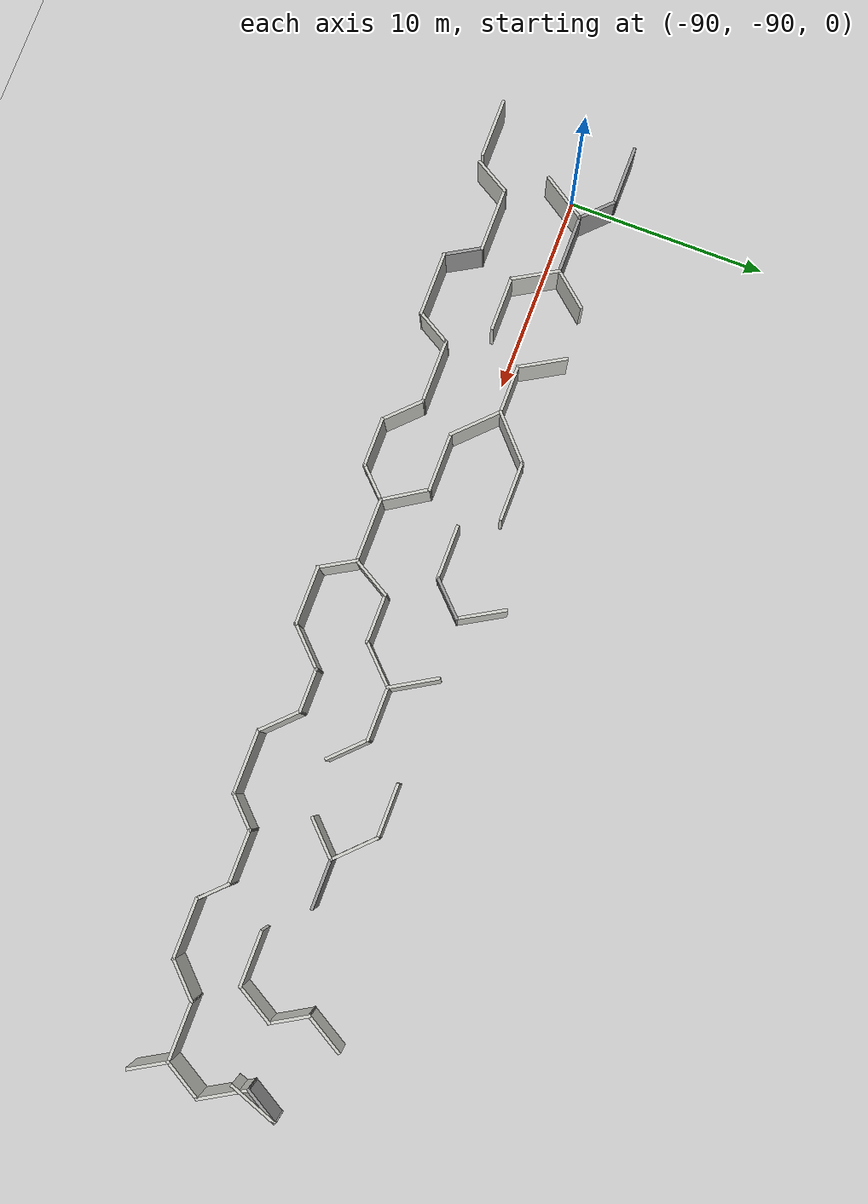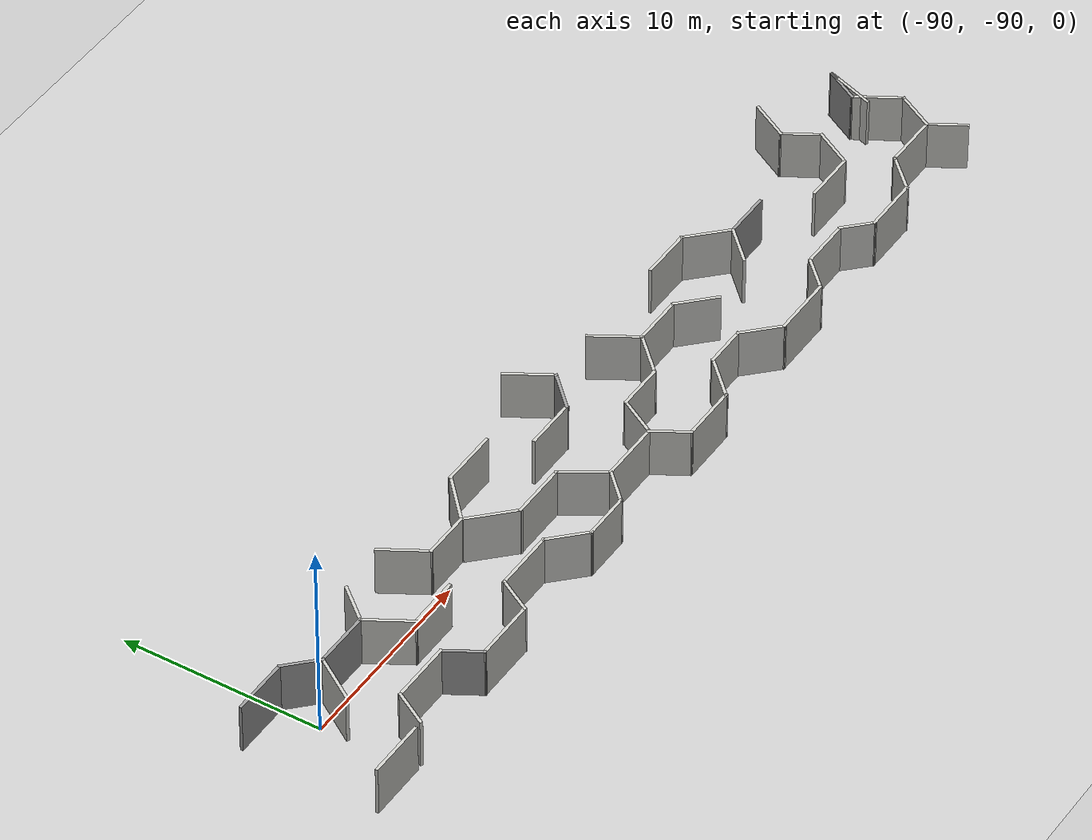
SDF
<sdf version="1.6">
 <world name="default">
  <model name="ground_plane">
   <pose>50 50 0 0 -0 0</pose>
   <static>1</static>
   <link name="link">
    <collision name="collision">
     <geometry><plane><normal>0 0 1</normal><size>100 100</size></plane></geometry>
     <surface><friction><ode><mu>100</mu><mu2>50</mu2></ode></friction></surface>
    </collision>
    <visual name="visual">
     <cast_shadows>0</cast_shadows>
     <geometry><plane><normal>0 0 1</normal><size>100 100</size></plane></geometry>
     <material>
      <script><uri>file://media/materials/scripts/gazebo.material</uri><name>Gazebo/Grey</name></script>
     </material>
    </visual>
   </link>
  </model>
  <model name="maze_1">
   <pose>-54.4916 -79.5001 0 0 -0 0</pose>
   <link name="Wall_10">
    <collision name="Wall_10_Collision">
     <geometry><box><size>2 0.15 2.5</size></box></geometry>
     <pose>0 0 1.25 0 -0 0</pose>
    </collision>
    <visual name="Wall_10_Visual">
     <pose>0 0 1.25 0 -0 0</pose>
     <geometry><box><size>2 0.15 2.5</size></box></geometry>
     <material>
      <script><uri>file://media/materials/scripts/gazebo.material</uri><name>Gazebo/Grey</name></script>
      <ambient>1 1 1 1</ambient>
     </material>
     <meta><layer>0</layer></meta>
    </visual>
    <pose>10.0085 -8.88058 0 0 -0 -2.0944</pose>
   </link>
   <link name="Wall_100">
    <collision name="Wall_100_Collision">
     <geometry><box><size>2.75 0.15 2.5</size></box></geometry>
     <pose>0 0 1.25 0 -0 0</pose>
    </collision>
    <visual name="Wall_100_Visual">
     <pose>0 0 1.25 0 -0 0</pose>
     <geometry><box><size>2.75 0.15 2.5</size></box></geometry>
     <material>
      <script><uri>file://media/materials/scripts/gazebo.material</uri><name>Gazebo/CeilingTiled</name></script>
      <ambient>1 1 1 1</ambient>
     </material>
     <meta><layer>0</layer></meta>
    </visual>
    <pose>-22.8053 -10.8644 0 0 -0 -0.785398</pose>
   </link>
   <link name="Wall_101">
    <collision name="Wall_101_Collision">
     <geometry><box><size>3 0.15 2.5</size></box></geometry>
     <pose>0 0 1.25 0 -0 0</pose>
    </collision>
    <visual name="Wall_101_Visual">
     <pose>0 0 1.25 0 -0 0</pose>
     <geometry><box><size>3 0.15 2.5</size></box></geometry>
     <material>
      <script><uri>file://media/materials/scripts/gazebo.material</uri><name>Gazebo/CeilingTiled</name></script>
      <ambient>1 1 1 1</ambient>
     </material>
     <meta><layer>0</layer></meta>
    </visual>
    <pose>-20.4611 -11.7836 0 0 -0 0</pose>
   </link>
   <link name="Wall_102">
    <collision name="Wall_102_Collision">
     <geometry><box><size>2.50433 0.15 2.5</size></box></geometry>
     <pose>0 0 1.25 0 -0 0</pose>
    </collision>
    <visual name="Wall_102_Visual">
     <pose>0 0 1.25 0 -0 0</pose>
     <geometry><box><size>2.50433 0.15 2.5</size></box></geometry>
     <material>
      <script><uri>file://media/materials/scripts/gazebo.material</uri><name>Gazebo/CeilingTiled</name></script>
      <ambient>1 1 1 1</ambient>
     </material>
     <meta><layer>0</layer></meta>
    </visual>
    <pose>-18.4056 -12.7777 0 0 -0 -1.00558</pose>
   </link>
   <link name="Wall_104">
    <collision name="Wall_104_Collision">
     <geometry><box><size>3 0.15 2.5</size></box></geometry>
     <pose>0 0 1.25 0 -0 0</pose>
    </collision>
    <visual name="Wall_104_Visual">
     <pose>0 0 1.25 0 -0 0</pose>
     <geometry><box><size>3 0.15 2.5</size></box></geometry>
     <material>
      <script><uri>file://media/materials/scripts/gazebo.material</uri><name>Gazebo/CeilingTiled</name></script>
      <ambient>1 1 1 1</ambient>
     </material>
     <meta><layer>0</layer></meta>
    </visual>
    <pose>-20.321 -8.13238 0 0 -0 3.14159</pose>
   </link>
   <link name="Wall_105">
    <collision name="Wall_105_Collision">
     <geometry><box><size>2.83342 0.15 2.5</size></box></geometry>
     <pose>0 0 1.25 0 -0 0</pose>
    </collision>
    <visual name="Wall_105_Visual">
     <pose>0 0 1.25 0 -0 0</pose>
     <geometry><box><size>2.83342 0.15 2.5</size></box></geometry>
     <material>
      <script><uri>file://media/materials/scripts/gazebo.material</uri><name>Gazebo/CeilingTiled</name></script>
      <ambient>1 1 1 1</ambient>
     </material>
     <meta><layer>0</layer></meta>
    </visual>
    <pose>-22.7353 -9.03876 0 0 -0 -2.39989</pose>
   </link>
   <link name="Wall_109">
    <collision name="Wall_109_Collision">
     <geometry><box><size>2.75 0.15 2.5</size></box></geometry>
     <pose>0 0 1.25 0 -0 0</pose>
    </collision>
    <visual name="Wall_109_Visual">
     <pose>0 0 1.25 0 -0 0</pose>
     <geometry><box><size>2.75 0.15 2.5</size></box></geometry>
     <material>
      <script><uri>file://media/materials/scripts/gazebo.material</uri><name>Gazebo/CeilingTiled</name></script>
      <ambient>1 1 1 1</ambient>
     </material>
     <meta><layer>0</layer></meta>
    </visual>
    <pose>-16.5382 -9.92253 0 0 -0 0</pose>
   </link>
   <link name="Wall_11">
    <collision name="Wall_11_Collision">
     <geometry><box><size>2.5 0.15 2.5</size></box></geometry>
     <pose>0 0 1.25 0 -0 0</pose>
    </collision>
    <visual name="Wall_11_Visual">
     <pose>0 0 1.25 0 -0 0</pose>
     <geometry><box><size>2.5 0.15 2.5</size></box></geometry>
     <material>
      <script><uri>file://media/materials/scripts/gazebo.material</uri><name>Gazebo/CeilingTiled</name></script>
      <ambient>1 1 1 1</ambient>
     </material>
     <meta><layer>0</layer></meta>
    </visual>
    <pose>10.1335 -10.6992 0 0 -0 -1.0472</pose>
   </link>
   <link name="Wall_110">
    <collision name="Wall_110_Collision">
     <geometry><box><size>2.25 0.15 2.5</size></box></geometry>
     <pose>0 0 1.25 0 -0 0</pose>
    </collision>
    <visual name="Wall_110_Visual">
     <pose>0 0 1.25 0 -0 0</pose>
     <geometry><box><size>2.25 0.15 2.5</size></box></geometry>
     <material>
      <script><uri>file://media/materials/scripts/gazebo.material</uri><name>Gazebo/Grey</name></script>
      <ambient>1 1 1 1</ambient>
     </material>
     <meta><layer>0</layer></meta>
    </visual>
    <pose>-14.4957 -9.18007 0 0 -0 0.785398</pose>
   </link>
   <link name="Wall_111">
    <collision name="Wall_111_Collision">
     <geometry><box><size>2.5 0.15 2.5</size></box></geometry>
     <pose>0 0 1.25 0 -0 0</pose>
    </collision>
    <visual name="Wall_111_Visual">
     <pose>0 0 1.25 0 -0 0</pose>
     <geometry><box><size>2.5 0.15 2.5</size></box></geometry>
     <material>
      <script><uri>file://media/materials/scripts/gazebo.material</uri><name>Gazebo/CeilingTiled</name></script>
      <ambient>1 1 1 1</ambient>
     </material>
     <meta><layer>0</layer></meta>
    </visual>
    <pose>-14.3408 -7.42003 0 0 -0 2.0944</pose>
   </link>
   <link name="Wall_12">
    <collision name="Wall_12_Collision">
     <geometry><box><size>2.25 0.15 2.5</size></box></geometry>
     <pose>0 0 1.25 0 -0 0</pose>
    </collision>
    <visual name="Wall_12_Visual">
     <pose>0 0 1.25 0 -0 0</pose>
     <geometry><box><size>2.25 0.15 2.5</size></box></geometry>
     <material>
      <script><uri>file://media/materials/scripts/gazebo.material</uri><name>Gazebo/CeilingTiled</name></script>
      <ambient>1 1 1 1</ambient>
     </material>
     <meta><layer>0</layer></meta>
    </visual>
    <pose>10.196 -12.6261 0 0 -0 -2.0944</pose>
   </link>
   <link name="Wall_126">
    <collision name="Wall_126_Collision">
     <geometry><box><size>2.5 0.15 2.5</size></box></geometry>
     <pose>0 0 1.25 0 -0 0</pose>
    </collision>
    <visual name="Wall_126_Visual">
     <pose>0 0 1.25 0 -0 0</pose>
     <geometry><box><size>2.5 0.15 2.5</size></box></geometry>
     <material>
      <script><uri>file://media/materials/scripts/gazebo.material</uri><name>Gazebo/Grey</name></script>
      <ambient>1 1 1 1</ambient>
     </material>
     <meta><layer>0</layer></meta>
    </visual>
    <pose>-0.135221 -9.92253 0 0 -0 3.14159</pose>
   </link>
   <link name="Wall_127">
    <collision name="Wall_127_Collision">
     <geometry><box><size>2.5 0.15 2.5</size></box></geometry>
     <pose>0 0 1.25 0 -0 0</pose>
    </collision>
    <visual name="Wall_127_Visual">
     <pose>0 0 1.25 0 -0 0</pose>
     <geometry><box><size>2.5 0.15 2.5</size></box></geometry>
     <material>
      <script><uri>file://media/materials/scripts/gazebo.material</uri><name>Gazebo/CeilingTiled</name></script>
      <ambient>1 1 1 1</ambient>
     </material>
     <meta><layer>0</layer></meta>
    </visual>
    <pose>-2.14107 -9.09168 0 0 -0 2.35619</pose>
   </link>
   <link name="Wall_128">
    <collision name="Wall_128_Collision">
     <geometry><box><size>2.75 0.15 2.5</size></box></geometry>
     <pose>0 0 1.25 0 -0 0</pose>
    </collision>
    <visual name="Wall_128_Visual">
     <pose>0 0 1.25 0 -0 0</pose>
     <geometry><box><size>2.75 0.15 2.5</size></box></geometry>
     <material>
      <script><uri>file://media/materials/scripts/gazebo.material</uri><name>Gazebo/CeilingTiled</name></script>
      <ambient>1 1 1 1</ambient>
     </material>
     <meta><layer>0</layer></meta>
    </visual>
    <pose>-4.27192 -8.26083 0 0 -0 3.14159</pose>
   </link>
   <link name="Wall_13">
    <collision name="Wall_13_Collision">
     <geometry><box><size>2 0.15 2.5</size></box></geometry>
     <pose>0 0 1.25 0 -0 0</pose>
    </collision>
    <visual name="Wall_13_Visual">
     <pose>0 0 1.25 0 -0 0</pose>
     <geometry><box><size>2 0.15 2.5</size></box></geometry>
     <material>
      <script><uri>file://media/materials/scripts/gazebo.material</uri><name>Gazebo/CeilingTiled</name></script>
      <ambient>1 1 1 1</ambient>
     </material>
     <meta><layer>0</layer></meta>
    </visual>
    <pose>10.1335 -14.3365 0 0 -0 -1.0472</pose>
   </link>
   <link name="Wall_135">
    <collision name="Wall_135_Collision">
     <geometry><box><size>2.22826 0.15 2.5</size></box></geometry>
     <pose>0 0 1.25 0 -0 0</pose>
    </collision>
    <visual name="Wall_135_Visual">
     <pose>0 0 1.25 0 -0 0</pose>
     <geometry><box><size>2.22826 0.15 2.5</size></box></geometry>
     <material>
      <script><uri>file://media/materials/scripts/gazebo.material</uri><name>Gazebo/CeilingTiled</name></script>
      <ambient>1 1 1 1</ambient>
     </material>
     <meta><layer>0</layer></meta>
    </visual>
    <pose>-2.04743 -10.6549 0 0 -0 0.782082</pose>
   </link>
   <link name="Wall_137">
    <collision name="Wall_137_Collision">
     <geometry><box><size>2.75 0.15 2.5</size></box></geometry>
     <pose>0 0 1.25 0 -0 0</pose>
    </collision>
    <visual name="Wall_137_Visual">
     <pose>0 0 1.25 0 -0 0</pose>
     <geometry><box><size>2.75 0.15 2.5</size></box></geometry>
     <material>
      <script><uri>file://media/materials/scripts/gazebo.material</uri><name>Gazebo/CeilingTiled</name></script>
      <ambient>1 1 1 1</ambient>
     </material>
     <meta><layer>0</layer></meta>
    </visual>
    <pose>4.12993 -11.7127 0 0 -0 0</pose>
   </link>
   <link name="Wall_138">
    <collision name="Wall_138_Collision">
     <geometry><box><size>2.25 0.15 2.5</size></box></geometry>
     <pose>0 0 1.25 0 -0 0</pose>
    </collision>
    <visual name="Wall_138_Visual">
     <pose>0 0 1.25 0 -0 0</pose>
     <geometry><box><size>2.25 0.15 2.5</size></box></geometry>
     <material>
      <script><uri>file://media/materials/scripts/gazebo.material</uri><name>Gazebo/CeilingTiled</name></script>
      <ambient>1 1 1 1</ambient>
     </material>
     <meta><layer>0</layer></meta>
    </visual>
    <pose>5.95493 -10.8034 0 0 -0 1.0472</pose>
   </link>
   <link name="Wall_139">
    <collision name="Wall_139_Collision">
     <geometry><box><size>2 0.15 2.5</size></box></geometry>
     <pose>0 0 1.25 0 -0 0</pose>
    </collision>
    <visual name="Wall_139_Visual">
     <pose>0 0 1.25 0 -0 0</pose>
     <geometry><box><size>2 0.15 2.5</size></box></geometry>
     <material>
      <script><uri>file://media/materials/scripts/gazebo.material</uri><name>Gazebo/CeilingTiled</name></script>
      <ambient>1 1 1 1</ambient>
     </material>
     <meta><layer>0</layer></meta>
    </visual>
    <pose>6.01743 -9.09296 0 0 -0 2.0944</pose>
   </link>
   <link name="Wall_140">
    <collision name="Wall_140_Collision">
     <geometry><box><size>2.25 0.15 2.5</size></box></geometry>
     <pose>0 0 1.25 0 -0 0</pose>
    </collision>
    <visual name="Wall_140_Visual">
     <pose>0 0 1.25 0 -0 0</pose>
     <geometry><box><size>2.25 0.15 2.5</size></box></geometry>
     <material>
      <script><uri>file://media/materials/scripts/gazebo.material</uri><name>Gazebo/CeilingTiled</name></script>
      <ambient>1 1 1 1</ambient>
     </material>
     <meta><layer>0</layer></meta>
    </visual>
    <pose>6.07993 -7.38256 0 0 -0 1.0472</pose>
   </link>
   <link name="Wall_15">
    <collision name="Wall_15_Collision">
     <geometry><box><size>3 0.15 2.5</size></box></geometry>
     <pose>0 0 1.25 0 -0 0</pose>
    </collision>
    <visual name="Wall_15_Visual">
     <pose>0 0 1.25 0 -0 0</pose>
     <geometry><box><size>3 0.15 2.5</size></box></geometry>
     <material>
      <script><uri>file://media/materials/scripts/gazebo.material</uri><name>Gazebo/CeilingTiled</name></script>
      <ambient>1 1 1 1</ambient>
     </material>
     <meta><layer>0</layer></meta>
    </visual>
    <pose>8.24595 -13.5355 0 0 -0 3.14159</pose>
   </link>
   <link name="Wall_16">
    <collision name="Wall_16_Collision">
     <geometry><box><size>2.25 0.15 2.5</size></box></geometry>
     <pose>0 0 1.25 0 -0 0</pose>
    </collision>
    <visual name="Wall_16_Visual">
     <pose>0 0 1.25 0 -0 0</pose>
     <geometry><box><size>2.25 0.15 2.5</size></box></geometry>
     <material>
      <script><uri>file://media/materials/scripts/gazebo.material</uri><name>Gazebo/CeilingTiled</name></script>
      <ambient>1 1 1 1</ambient>
     </material>
     <meta><layer>0</layer></meta>
    </visual>
    <pose>6.07849 -14.2779 0 0 -0 -2.35619</pose>
   </link>
   <link name="Wall_17">
    <collision name="Wall_17_Collision">
     <geometry><box><size>3 0.15 2.5</size></box></geometry>
     <pose>0 0 1.25 0 -0 0</pose>
    </collision>
    <visual name="Wall_17_Visual">
     <pose>0 0 1.25 0 -0 0</pose>
     <geometry><box><size>3 0.15 2.5</size></box></geometry>
     <material>
      <script><uri>file://media/materials/scripts/gazebo.material</uri><name>Gazebo/CeilingTiled</name></script>
      <ambient>1 1 1 1</ambient>
     </material>
     <meta><layer>0</layer></meta>
    </visual>
    <pose>3.91103 -15.0204 0 0 -0 3.14159</pose>
   </link>
   <link name="Wall_18">
    <collision name="Wall_18_Collision">
     <geometry><box><size>1.75 0.15 2.5</size></box></geometry>
     <pose>0 0 1.25 0 -0 0</pose>
    </collision>
    <visual name="Wall_18_Visual">
     <pose>0 0 1.25 0 -0 0</pose>
     <geometry><box><size>1.75 0.15 2.5</size></box></geometry>
     <material>
      <script><uri>file://media/materials/scripts/gazebo.material</uri><name>Gazebo/CeilingTiled</name></script>
      <ambient>1 1 1 1</ambient>
     </material>
     <meta><layer>0</layer></meta>
    </visual>
    <pose>1.92034 -14.4547 0 0 -0 2.35619</pose>
   </link>
   <link name="Wall_19">
    <collision name="Wall_19_Collision">
     <geometry><box><size>2.75 0.15 2.5</size></box></geometry>
     <pose>0 0 1.25 0 -0 0</pose>
    </collision>
    <visual name="Wall_19_Visual">
     <pose>0 0 1.25 0 -0 0</pose>
     <geometry><box><size>2.75 0.15 2.5</size></box></geometry>
     <material>
      <script><uri>file://media/materials/scripts/gazebo.material</uri><name>Gazebo/CeilingTiled</name></script>
      <ambient>1 1 1 1</ambient>
     </material>
     <meta><layer>0</layer></meta>
    </visual>
    <pose>0.054658 -13.889 0 0 -0 3.14159</pose>
   </link>
   <link name="Wall_20">
    <collision name="Wall_20_Collision">
     <geometry><box><size>2 0.15 2.5</size></box></geometry>
     <pose>0 0 1.25 0 -0 0</pose>
    </collision>
    <visual name="Wall_20_Visual">
     <pose>0 0 1.25 0 -0 0</pose>
     <geometry><box><size>2 0.15 2.5</size></box></geometry>
     <material>
      <script><uri>file://media/materials/scripts/gazebo.material</uri><name>Gazebo/CeilingTiled</name></script>
      <ambient>1 1 1 1</ambient>
     </material>
     <meta><layer>0</layer></meta>
    </visual>
    <pose>-1.89942 -14.5431 0 0 -0 -2.35619</pose>
   </link>
   <link name="Wall_21">
    <collision name="Wall_21_Collision">
     <geometry><box><size>3.25 0.15 2.5</size></box></geometry>
     <pose>0 0 1.25 0 -0 0</pose>
    </collision>
    <visual name="Wall_21_Visual">
     <pose>0 0 1.25 0 -0 0</pose>
     <geometry><box><size>3.25 0.15 2.5</size></box></geometry>
     <material>
      <script><uri>file://media/materials/scripts/gazebo.material</uri><name>Gazebo/CeilingTiled</name></script>
      <ambient>1 1 1 1</ambient>
     </material>
     <meta><layer>0</layer></meta>
    </visual>
    <pose>-4.10349 -15.1972 0 0 -0 3.14159</pose>
   </link>
   <link name="Wall_22">
    <collision name="Wall_22_Collision">
     <geometry><box><size>2.25 0.15 2.5</size></box></geometry>
     <pose>0 0 1.25 0 -0 0</pose>
    </collision>
    <visual name="Wall_22_Visual">
     <pose>0 0 1.25 0 -0 0</pose>
     <geometry><box><size>2.25 0.15 2.5</size></box></geometry>
     <material>
      <script><uri>file://media/materials/scripts/gazebo.material</uri><name>Gazebo/CeilingTiled</name></script>
      <ambient>1 1 1 1</ambient>
     </material>
     <meta><layer>0</layer></meta>
    </visual>
    <pose>-6.39595 -14.4547 0 0 -0 2.35619</pose>
   </link>
   <link name="Wall_23">
    <collision name="Wall_23_Collision">
     <geometry><box><size>2.25 0.15 2.5</size></box></geometry>
     <pose>0 0 1.25 0 -0 0</pose>
    </collision>
    <visual name="Wall_23_Visual">
     <pose>0 0 1.25 0 -0 0</pose>
     <geometry><box><size>2.25 0.15 2.5</size></box></geometry>
     <material>
      <script><uri>file://media/materials/scripts/gazebo.material</uri><name>Gazebo/CeilingTiled</name></script>
      <ambient>1 1 1 1</ambient>
     </material>
     <meta><layer>0</layer></meta>
    </visual>
    <pose>-8.18841 -13.7122 0 0 -0 3.14159</pose>
   </link>
   <link name="Wall_24">
    <collision name="Wall_24_Collision">
     <geometry><box><size>2.5 0.15 2.5</size></box></geometry>
     <pose>0 0 1.25 0 -0 0</pose>
    </collision>
    <visual name="Wall_24_Visual">
     <pose>0 0 1.25 0 -0 0</pose>
     <geometry><box><size>2.5 0.15 2.5</size></box></geometry>
     <material>
      <script><uri>file://media/materials/scripts/gazebo.material</uri><name>Gazebo/CeilingTiled</name></script>
      <ambient>1 1 1 1</ambient>
     </material>
     <meta><layer>0</layer></meta>
    </visual>
    <pose>-10.0693 -14.5431 0 0 -0 -2.35619</pose>
   </link>
   <link name="Wall_25">
    <collision name="Wall_25_Collision">
     <geometry><box><size>3 0.15 2.5</size></box></geometry>
     <pose>0 0 1.25 0 -0 0</pose>
    </collision>
    <visual name="Wall_25_Visual">
     <pose>0 0 1.25 0 -0 0</pose>
     <geometry><box><size>3 0.15 2.5</size></box></geometry>
     <material>
      <script><uri>file://media/materials/scripts/gazebo.material</uri><name>Gazebo/CeilingTiled</name></script>
      <ambient>1 1 1 1</ambient>
     </material>
     <meta><layer>0</layer></meta>
    </visual>
    <pose>-12.3251 -15.3739 0 0 -0 3.14159</pose>
   </link>
   <link name="Wall_26">
    <collision name="Wall_26_Collision">
     <geometry><box><size>2 0.15 2.5</size></box></geometry>
     <pose>0 0 1.25 0 -0 0</pose>
    </collision>
    <visual name="Wall_26_Visual">
     <pose>0 0 1.25 0 -0 0</pose>
     <geometry><box><size>2 0.15 2.5</size></box></geometry>
     <material>
      <script><uri>file://media/materials/scripts/gazebo.material</uri><name>Gazebo/CeilingTiled</name></script>
      <ambient>1 1 1 1</ambient>
     </material>
     <meta><layer>0</layer></meta>
    </visual>
    <pose>-14.2126 -14.5729 0 0 -0 2.0944</pose>
   </link>
   <link name="Wall_27">
    <collision name="Wall_27_Collision">
     <geometry><box><size>2.25 0.15 2.5</size></box></geometry>
     <pose>0 0 1.25 0 -0 0</pose>
    </collision>
    <visual name="Wall_27_Visual">
     <pose>0 0 1.25 0 -0 0</pose>
     <geometry><box><size>2.25 0.15 2.5</size></box></geometry>
     <material>
      <script><uri>file://media/materials/scripts/gazebo.material</uri><name>Gazebo/CeilingTiled</name></script>
      <ambient>1 1 1 1</ambient>
     </material>
     <meta><layer>0</layer></meta>
    </visual>
    <pose>-14.1501 -12.8625 0 0 -0 1.0472</pose>
   </link>
   <link name="Wall_28">
    <collision name="Wall_28_Collision">
     <geometry><box><size>2.5 0.15 2.5</size></box></geometry>
     <pose>0 0 1.25 0 -0 0</pose>
    </collision>
    <visual name="Wall_28_Visual">
     <pose>0 0 1.25 0 -0 0</pose>
     <geometry><box><size>2.5 0.15 2.5</size></box></geometry>
     <material>
      <script><uri>file://media/materials/scripts/gazebo.material</uri><name>Gazebo/CeilingTiled</name></script>
      <ambient>1 1 1 1</ambient>
     </material>
     <meta><layer>0</layer></meta>
    </visual>
    <pose>-12.4501 -11.9531 0 0 -0 0</pose>
   </link>
   <link name="Wall_29">
    <collision name="Wall_29_Collision">
     <geometry><box><size>2.5 0.15 2.5</size></box></geometry>
     <pose>0 0 1.25 0 -0 0</pose>
    </collision>
    <visual name="Wall_29_Visual">
     <pose>0 0 1.25 0 -0 0</pose>
     <geometry><box><size>2.5 0.15 2.5</size></box></geometry>
     <material>
      <script><uri>file://media/materials/scripts/gazebo.material</uri><name>Gazebo/CeilingTiled</name></script>
      <ambient>1 1 1 1</ambient>
     </material>
     <meta><layer>0</layer></meta>
    </visual>
    <pose>-10.4443 -11.1223 0 0 -0 0.785398</pose>
   </link>
   <link name="Wall_30">
    <collision name="Wall_30_Collision">
     <geometry><box><size>2.75 0.15 2.5</size></box></geometry>
     <pose>0 0 1.25 0 -0 0</pose>
    </collision>
    <visual name="Wall_30_Visual">
     <pose>0 0 1.25 0 -0 0</pose>
     <geometry><box><size>2.75 0.15 2.5</size></box></geometry>
     <material>
      <script><uri>file://media/materials/scripts/gazebo.material</uri><name>Gazebo/CeilingTiled</name></script>
      <ambient>1 1 1 1</ambient>
     </material>
     <meta><layer>0</layer></meta>
    </visual>
    <pose>-8.31341 -10.2914 0 0 -0 0</pose>
   </link>
   <link name="Wall_31">
    <collision name="Wall_31_Collision">
     <geometry><box><size>2.25 0.15 2.5</size></box></geometry>
     <pose>0 0 1.25 0 -0 0</pose>
    </collision>
    <visual name="Wall_31_Visual">
     <pose>0 0 1.25 0 -0 0</pose>
     <geometry><box><size>2.25 0.15 2.5</size></box></geometry>
     <material>
      <script><uri>file://media/materials/scripts/gazebo.material</uri><name>Gazebo/CeilingTiled</name></script>
      <ambient>1 1 1 1</ambient>
     </material>
     <meta><layer>0</layer></meta>
    </visual>
    <pose>-6.27095 -11.0339 0 0 -0 -0.785398</pose>
   </link>
   <link name="Wall_33">
    <collision name="Wall_33_Collision">
     <geometry><box><size>2.56291 0.15 2.5</size></box></geometry>
     <pose>0 0 1.25 0 -0 0</pose>
    </collision>
    <visual name="Wall_33_Visual">
     <pose>0 0 1.25 0 -0 0</pose>
     <geometry><box><size>2.56291 0.15 2.5</size></box></geometry>
     <material>
      <script><uri>file://media/materials/scripts/gazebo.material</uri><name>Gazebo/CeilingTiled</name></script>
      <ambient>1 1 1 1</ambient>
     </material>
     <meta><layer>0</layer></meta>
    </visual>
    <pose>-10.2269 -9.25259 0 0 -0 -1.03738</pose>
   </link>
   <link name="Wall_35">
    <collision name="Wall_35_Collision">
     <geometry><box><size>3.25 0.15 2.5</size></box></geometry>
     <pose>0 0 1.25 0 -0 0</pose>
    </collision>
    <visual name="Wall_35_Visual">
     <pose>0 0 1.25 0 -0 0</pose>
     <geometry><box><size>3.25 0.15 2.5</size></box></geometry>
     <material>
      <script><uri>file://media/materials/scripts/gazebo.material</uri><name>Gazebo/CeilingTiled</name></script>
      <ambient>1 1 1 1</ambient>
     </material>
     <meta><layer>0</layer></meta>
    </visual>
    <pose>-16.2251 -13.7718 0 0 -0 3.14159</pose>
   </link>
   <link name="Wall_36">
    <collision name="Wall_36_Collision">
     <geometry><box><size>2 0.15 2.5</size></box></geometry>
     <pose>0 0 1.25 0 -0 0</pose>
    </collision>
    <visual name="Wall_36_Visual">
     <pose>0 0 1.25 0 -0 0</pose>
     <geometry><box><size>2 0.15 2.5</size></box></geometry>
     <material>
      <script><uri>file://media/materials/scripts/gazebo.material</uri><name>Gazebo/CeilingTiled</name></script>
      <ambient>1 1 1 1</ambient>
     </material>
     <meta><layer>0</layer></meta>
    </visual>
    <pose>-18.4292 -14.4259 0 0 -0 -2.35619</pose>
   </link>
   <link name="Wall_37">
    <collision name="Wall_37_Collision">
     <geometry><box><size>2.5 0.15 2.5</size></box></geometry>
     <pose>0 0 1.25 0 -0 0</pose>
    </collision>
    <visual name="Wall_37_Visual">
     <pose>0 0 1.25 0 -0 0</pose>
     <geometry><box><size>2.5 0.15 2.5</size></box></geometry>
     <material>
      <script><uri>file://media/materials/scripts/gazebo.material</uri><name>Gazebo/CeilingTiled</name></script>
      <ambient>1 1 1 1</ambient>
     </material>
     <meta><layer>0</layer></meta>
    </visual>
    <pose>-20.2583 -15.0799 0 0 -0 3.14159</pose>
   </link>
   <link name="Wall_38">
    <collision name="Wall_38_Collision">
     <geometry><box><size>2.25 0.15 2.5</size></box></geometry>
     <pose>0 0 1.25 0 -0 0</pose>
    </collision>
    <visual name="Wall_38_Visual">
     <pose>0 0 1.25 0 -0 0</pose>
     <geometry><box><size>2.25 0.15 2.5</size></box></geometry>
     <material>
      <script><uri>file://media/materials/scripts/gazebo.material</uri><name>Gazebo/CeilingTiled</name></script>
      <ambient>1 1 1 1</ambient>
     </material>
     <meta><layer>0</layer></meta>
    </visual>
    <pose>-22.1757 -14.3375 0 0 -0 2.35619</pose>
   </link>
   <link name="Wall_39">
    <collision name="Wall_39_Collision">
     <geometry><box><size>3.25 0.15 2.5</size></box></geometry>
     <pose>0 0 1.25 0 -0 0</pose>
    </collision>
    <visual name="Wall_39_Visual">
     <pose>0 0 1.25 0 -0 0</pose>
     <geometry><box><size>3.25 0.15 2.5</size></box></geometry>
     <material>
      <script><uri>file://media/materials/scripts/gazebo.material</uri><name>Gazebo/CeilingTiled</name></script>
      <ambient>1 1 1 1</ambient>
     </material>
     <meta><layer>0</layer></meta>
    </visual>
    <pose>-24.4682 -13.595 0 0 -0 3.14159</pose>
   </link>
   <link name="Wall_40">
    <collision name="Wall_40_Collision">
     <geometry><box><size>2 0.15 2.5</size></box></geometry>
     <pose>0 0 1.25 0 -0 0</pose>
    </collision>
    <visual name="Wall_40_Visual">
     <pose>0 0 1.25 0 -0 0</pose>
     <geometry><box><size>2 0.15 2.5</size></box></geometry>
     <material>
      <script><uri>file://media/materials/scripts/gazebo.material</uri><name>Gazebo/CeilingTiled</name></script>
      <ambient>1 1 1 1</ambient>
     </material>
     <meta><layer>0</layer></meta>
    </visual>
    <pose>-26.4807 -14.3961 0 0 -0 -2.0944</pose>
   </link>
   <link name="Wall_41">
    <collision name="Wall_41_Collision">
     <geometry><box><size>3.25 0.15 2.5</size></box></geometry>
     <pose>0 0 1.25 0 -0 0</pose>
    </collision>
    <visual name="Wall_41_Visual">
     <pose>0 0 1.25 0 -0 0</pose>
     <geometry><box><size>3.25 0.15 2.5</size></box></geometry>
     <material>
      <script><uri>file://media/materials/scripts/gazebo.material</uri><name>Gazebo/CeilingTiled</name></script>
      <ambient>1 1 1 1</ambient>
     </material>
     <meta><layer>0</layer></meta>
    </visual>
    <pose>-28.4932 -15.1972 0 0 -0 3.14159</pose>
   </link>
   <link name="Wall_42">
    <collision name="Wall_42_Collision">
     <geometry><box><size>2 0.15 2.5</size></box></geometry>
     <pose>0 0 1.25 0 -0 0</pose>
    </collision>
    <visual name="Wall_42_Visual">
     <pose>0 0 1.25 0 -0 0</pose>
     <geometry><box><size>2 0.15 2.5</size></box></geometry>
     <material>
      <script><uri>file://media/materials/scripts/gazebo.material</uri><name>Gazebo/Grey</name></script>
      <ambient>1 1 1 1</ambient>
     </material>
     <meta><layer>0</layer></meta>
    </visual>
    <pose>-30.5057 -14.3961 0 0 -0 2.0944</pose>
   </link>
   <link name="Wall_43">
    <collision name="Wall_43_Collision">
     <geometry><box><size>3.25 0.15 2.5</size></box></geometry>
     <pose>0 0 1.25 0 -0 0</pose>
    </collision>
    <visual name="Wall_43_Visual">
     <pose>0 0 1.25 0 -0 0</pose>
     <geometry><box><size>3.25 0.15 2.5</size></box></geometry>
     <material>
      <script><uri>file://media/materials/scripts/gazebo.material</uri><name>Gazebo/CeilingTiled</name></script>
      <ambient>1 1 1 1</ambient>
     </material>
     <meta><layer>0</layer></meta>
    </visual>
    <pose>-32.5182 -13.595 0 0 -0 3.14159</pose>
   </link>
   <link name="Wall_44">
    <collision name="Wall_44_Collision">
     <geometry><box><size>2 0.15 2.5</size></box></geometry>
     <pose>0 0 1.25 0 -0 0</pose>
    </collision>
    <visual name="Wall_44_Visual">
     <pose>0 0 1.25 0 -0 0</pose>
     <geometry><box><size>2 0.15 2.5</size></box></geometry>
     <material>
      <script><uri>file://media/materials/scripts/gazebo.material</uri><name>Gazebo/CeilingTiled</name></script>
      <ambient>1 1 1 1</ambient>
     </material>
     <meta><layer>0</layer></meta>
    </visual>
    <pose>-34.5307 -14.3961 0 0 -0 -2.0944</pose>
   </link>
   <link name="Wall_46">
    <collision name="Wall_46_Collision">
     <geometry><box><size>3 0.15 2.5</size></box></geometry>
     <pose>0 0 1.25 0 -0 0</pose>
    </collision>
    <visual name="Wall_46_Visual">
     <pose>0 0 1.25 0 -0 0</pose>
     <geometry><box><size>3 0.15 2.5</size></box></geometry>
     <material>
      <script><uri>file://media/materials/scripts/gazebo.material</uri><name>Gazebo/CeilingTiled</name></script>
      <ambient>1 1 1 1</ambient>
     </material>
     <meta><layer>0</layer></meta>
    </visual>
    <pose>-36.8393 -15.2116 0 0 -0 3.14159</pose>
   </link>
   <link name="Wall_51">
    <collision name="Wall_51_Collision">
     <geometry><box><size>3 0.15 2.5</size></box></geometry>
     <pose>0 0 1.25 0 -0 0</pose>
    </collision>
    <visual name="Wall_51_Visual">
     <pose>0 0 1.25 0 -0 0</pose>
     <geometry><box><size>3 0.15 2.5</size></box></geometry>
     <material>
      <script><uri>file://media/materials/scripts/gazebo.material</uri><name>Gazebo/Grey</name></script>
      <ambient>1 1 1 1</ambient>
     </material>
     <meta><layer>0</layer></meta>
    </visual>
    <pose>-36.7956 -8.40778 0 0 -0 0</pose>
   </link>
   <link name="Wall_52">
    <collision name="Wall_52_Collision">
     <geometry><box><size>2 0.15 2.5</size></box></geometry>
     <pose>0 0 1.25 0 -0 0</pose>
    </collision>
    <visual name="Wall_52_Visual">
     <pose>0 0 1.25 0 -0 0</pose>
     <geometry><box><size>2 0.15 2.5</size></box></geometry>
     <material>
      <script><uri>file://media/materials/scripts/gazebo.material</uri><name>Gazebo/Grey</name></script>
      <ambient>1 1 1 1</ambient>
     </material>
     <meta><layer>0</layer></meta>
    </visual>
    <pose>-34.7166 -9.06186 0 0 -0 -0.785398</pose>
   </link>
   <link name="Wall_53">
    <collision name="Wall_53_Collision">
     <geometry><box><size>3 0.15 2.5</size></box></geometry>
     <pose>0 0 1.25 0 -0 0</pose>
    </collision>
    <visual name="Wall_53_Visual">
     <pose>0 0 1.25 0 -0 0</pose>
     <geometry><box><size>3 0.15 2.5</size></box></geometry>
     <material>
      <script><uri>file://media/materials/scripts/gazebo.material</uri><name>Gazebo/Grey</name></script>
      <ambient>1 1 1 1</ambient>
     </material>
     <meta><layer>0</layer></meta>
    </visual>
    <pose>-32.6375 -9.71593 0 0 -0 0</pose>
   </link>
   <link name="Wall_54">
    <collision name="Wall_54_Collision">
     <geometry><box><size>2.5 0.15 2.5</size></box></geometry>
     <pose>0 0 1.25 0 -0 0</pose>
    </collision>
    <visual name="Wall_54_Visual">
     <pose>0 0 1.25 0 -0 0</pose>
     <geometry><box><size>2.5 0.15 2.5</size></box></geometry>
     <material>
      <script><uri>file://media/materials/scripts/gazebo.material</uri><name>Gazebo/CeilingTiled</name></script>
      <ambient>1 1 1 1</ambient>
     </material>
     <meta><layer>0</layer></meta>
    </visual>
    <pose>-30.625 -10.7335 0 0 -0 -1.0472</pose>
   </link>
   <link name="Wall_55">
    <collision name="Wall_55_Collision">
     <geometry><box><size>2.75 0.15 2.5</size></box></geometry>
     <pose>0 0 1.25 0 -0 0</pose>
    </collision>
    <visual name="Wall_55_Visual">
     <pose>0 0 1.25 0 -0 0</pose>
     <geometry><box><size>2.75 0.15 2.5</size></box></geometry>
     <material>
      <script><uri>file://media/materials/scripts/gazebo.material</uri><name>Gazebo/CeilingTiled</name></script>
      <ambient>1 1 1 1</ambient>
     </material>
     <meta><layer>0</layer></meta>
    </visual>
    <pose>-28.7375 -11.7511 0 0 -0 0</pose>
   </link>
   <link name="Wall_57">
    <collision name="Wall_57_Collision">
     <geometry><box><size>2.2189 0.15 2.5</size></box></geometry>
     <pose>0 0 1.25 0 -0 0</pose>
    </collision>
    <visual name="Wall_57_Visual">
     <pose>0 0 1.25 0 -0 0</pose>
     <geometry><box><size>2.2189 0.15 2.5</size></box></geometry>
     <material>
      <script><uri>file://media/materials/scripts/gazebo.material</uri><name>Gazebo/CeilingTiled</name></script>
      <ambient>1 1 1 1</ambient>
     </material>
     <meta><layer>0</layer></meta>
    </visual>
    <pose>-30.5468 -8.92415 0 0 -0 -2.26992</pose>
   </link>
   <link name="Wall_59">
    <collision name="Wall_59_Collision">
     <geometry><box><size>2.62909 0.15 2.5</size></box></geometry>
     <pose>0 0 1.25 0 -0 0</pose>
    </collision>
    <visual name="Wall_59_Visual">
     <pose>0 0 1.25 0 -0 0</pose>
     <geometry><box><size>2.62909 0.15 2.5</size></box></geometry>
     <material>
      <script><uri>file://media/materials/scripts/gazebo.material</uri><name>Gazebo/CeilingTiled</name></script>
      <ambient>1 1 1 1</ambient>
     </material>
     <meta><layer>0</layer></meta>
    </visual>
    <pose>-34.7384 -10.755 0 0 -0 0.994084</pose>
   </link>
   <link name="Wall_6">
    <collision name="Wall_6_Collision">
     <geometry><box><size>2.65885 0.15 2.5</size></box></geometry>
     <pose>0 0 1.25 0 -0 0</pose>
    </collision>
    <visual name="Wall_6_Visual">
     <pose>0 0 1.25 0 -0 0</pose>
     <geometry><box><size>2.65885 0.15 2.5</size></box></geometry>
     <material>
      <script><uri>file://media/materials/scripts/gazebo.material</uri><name>Gazebo/CeilingTiled</name></script>
      <ambient>1 1 1 1</ambient>
     </material>
     <meta><layer>0</layer></meta>
    </visual>
    <pose>10.0462 -9.25983 0 0 -0 -1.91623</pose>
   </link>
   <link name="Wall_98">
    <collision name="Wall_98_Collision">
     <geometry><box><size>2.5 0.15 2.5</size></box></geometry>
     <pose>0 0 1.25 0 -0 0</pose>
    </collision>
    <visual name="Wall_98_Visual">
     <pose>0 0 1.25 0 -0 0</pose>
     <geometry><box><size>2.5 0.15 2.5</size></box></geometry>
     <material>
      <script><uri>file://media/materials/scripts/gazebo.material</uri><name>Gazebo/CeilingTiled</name></script>
      <ambient>1 1 1 1</ambient>
     </material>
     <meta><layer>0</layer></meta>
    </visual>
    <pose>-26.6621 -8.92756 0 0 -0 -1.0472</pose>
   </link>
   <link name="Wall_99">
    <collision name="Wall_99_Collision">
     <geometry><box><size>2.5 0.15 2.5</size></box></geometry>
     <pose>0 0 1.25 0 -0 0</pose>
    </collision>
    <visual name="Wall_99_Visual">
     <pose>0 0 1.25 0 -0 0</pose>
     <geometry><box><size>2.5 0.15 2.5</size></box></geometry>
     <material>
      <script><uri>file://media/materials/scripts/gazebo.material</uri><name>Gazebo/CeilingTiled</name></script>
      <ambient>1 1 1 1</ambient>
     </material>
     <meta><layer>0</layer></meta>
    </visual>
    <pose>-24.8996 -9.94515 0 0 -0 0</pose>
   </link>
   <static>1</static>
  </model>
 </world>
</sdf>
